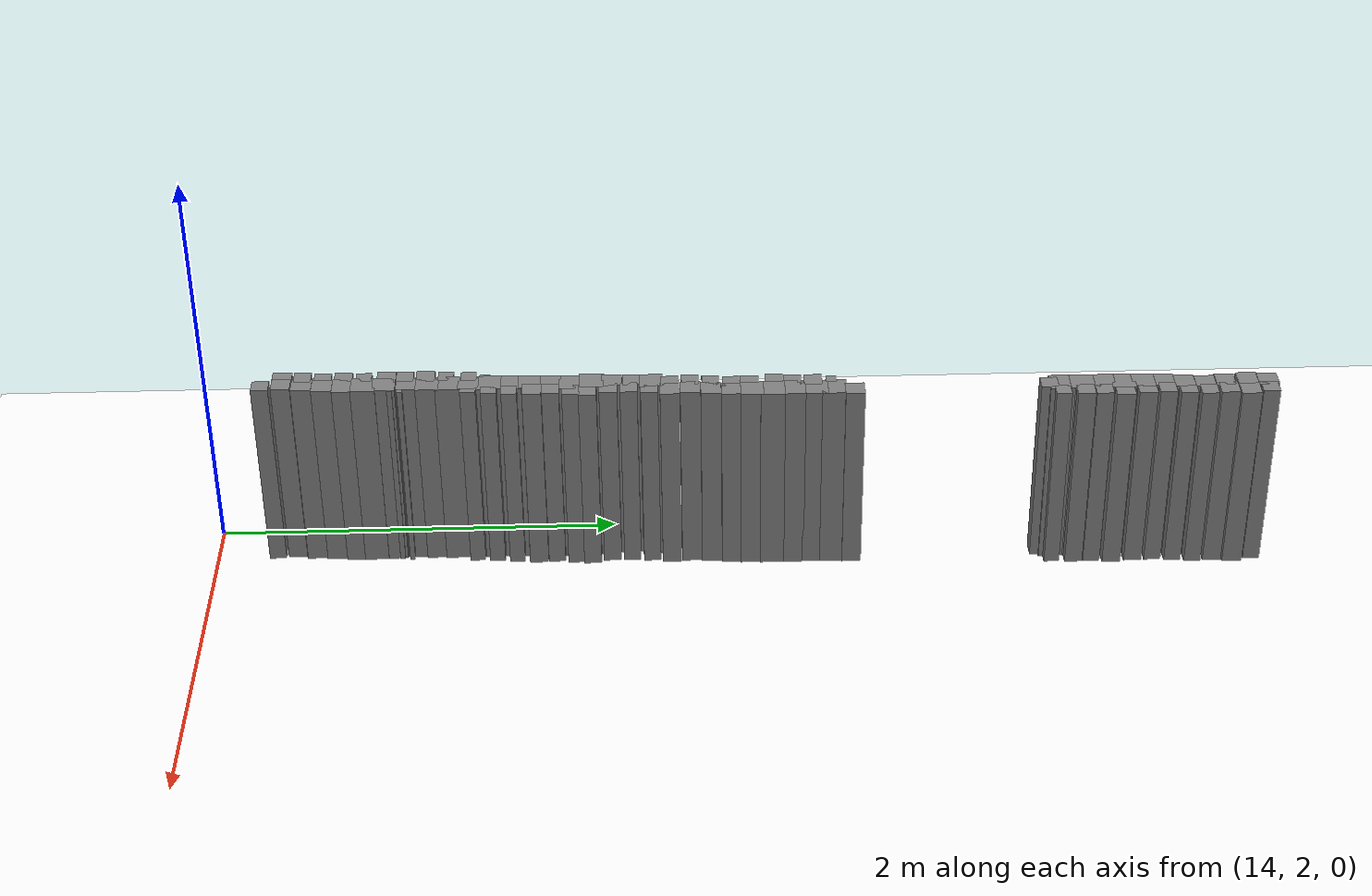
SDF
<sdf version="1.6">
 <world name="default">
  <model name="group_473">
   <pose>14.30 7.11 0.5 0 0 0</pose>
   <static>true</static>
   <link name="link">
    <collision name="collision">
     <geometry><box><size>0.09919226406566957 0.09919226406566957 1</size></box></geometry>
    </collision>
    <visual name="visual">
     <geometry><box><size>0.09919226406566957 0.09919226406566957 1</size></box></geometry>
     <material><ambient>0.5 0.5 0.5 1</ambient></material>
    </visual>
   </link>
  </model>
  <model name="group_474">
   <pose>14.31 7.21 0.5 0 0 0</pose>
   <static>true</static>
   <link name="link">
    <collision name="collision">
     <geometry><box><size>0.09919226406566871 0.09919226406566871 1</size></box></geometry>
    </collision>
    <visual name="visual">
     <geometry><box><size>0.09919226406566871 0.09919226406566871 1</size></box></geometry>
     <material><ambient>0.5 0.5 0.5 1</ambient></material>
    </visual>
   </link>
  </model>
  <model name="group_491">
   <pose>14.25 6.41 0.5 0 0 0</pose>
   <static>true</static>
   <link name="link">
    <collision name="collision"><geometry><box><size>0.0 0.0 1</size></box></geometry></collision>
    <visual name="visual">
     <geometry><box><size>0.0 0.0 1</size></box></geometry>
     <material><ambient>0.5 0.5 0.5 1</ambient></material>
    </visual>
   </link>
  </model>
  <model name="group_492">
   <pose>14.30 6.40 0.5 0 0 0</pose>
   <static>true</static>
   <link name="link">
    <collision name="collision">
     <geometry><box><size>0.11884310777185952 0.11884310777185952 1</size></box></geometry>
    </collision>
    <visual name="visual">
     <geometry><box><size>0.11884310777185952 0.11884310777185952 1</size></box></geometry>
     <material><ambient>0.5 0.5 0.5 1</ambient></material>
    </visual>
   </link>
  </model>
  <model name="group_493">
   <pose>14.30 6.50 0.5 0 0 0</pose>
   <static>true</static>
   <link name="link">
    <collision name="collision">
     <geometry><box><size>0.11941295585761268 0.11941295585761268 1</size></box></geometry>
    </collision>
    <visual name="visual">
     <geometry><box><size>0.11941295585761268 0.11941295585761268 1</size></box></geometry>
     <material><ambient>0.5 0.5 0.5 1</ambient></material>
    </visual>
   </link>
  </model>
  <model name="group_494">
   <pose>14.30 6.60 0.5 0 0 0</pose>
   <static>true</static>
   <link name="link">
    <collision name="collision">
     <geometry><box><size>0.11145209213376754 0.11145209213376754 1</size></box></geometry>
    </collision>
    <visual name="visual">
     <geometry><box><size>0.11145209213376754 0.11145209213376754 1</size></box></geometry>
     <material><ambient>0.5 0.5 0.5 1</ambient></material>
    </visual>
   </link>
  </model>
  <model name="group_495">
   <pose>14.30 6.70 0.5 0 0 0</pose>
   <static>true</static>
   <link name="link">
    <collision name="collision">
     <geometry><box><size>0.09919226406566818 0.09919226406566818 1</size></box></geometry>
    </collision>
    <visual name="visual">
     <geometry><box><size>0.09919226406566818 0.09919226406566818 1</size></box></geometry>
     <material><ambient>0.5 0.5 0.5 1</ambient></material>
    </visual>
   </link>
  </model>
  <model name="group_496">
   <pose>14.31 6.80 0.5 0 0 0</pose>
   <static>true</static>
   <link name="link">
    <collision name="collision">
     <geometry><box><size>0.09919226406566818 0.09919226406566818 1</size></box></geometry>
    </collision>
    <visual name="visual">
     <geometry><box><size>0.09919226406566818 0.09919226406566818 1</size></box></geometry>
     <material><ambient>0.5 0.5 0.5 1</ambient></material>
    </visual>
   </link>
  </model>
  <model name="group_497">
   <pose>14.32 6.90 0.5 0 0 0</pose>
   <static>true</static>
   <link name="link">
    <collision name="collision">
     <geometry><box><size>0.09919226406567094 0.09919226406567094 1</size></box></geometry>
    </collision>
    <visual name="visual">
     <geometry><box><size>0.09919226406567094 0.09919226406567094 1</size></box></geometry>
     <material><ambient>0.5 0.5 0.5 1</ambient></material>
    </visual>
   </link>
  </model>
  <model name="group_498">
   <pose>14.31 7.00 0.5 0 0 0</pose>
   <static>true</static>
   <link name="link">
    <collision name="collision">
     <geometry><box><size>0.0952960850963408 0.0952960850963408 1</size></box></geometry>
    </collision>
    <visual name="visual">
     <geometry><box><size>0.0952960850963408 0.0952960850963408 1</size></box></geometry>
     <material><ambient>0.5 0.5 0.5 1</ambient></material>
    </visual>
   </link>
  </model>
  <model name="group_505">
   <pose>14.30 6.14 0.5 0 0 0</pose>
   <static>true</static>
   <link name="link">
    <collision name="collision">
     <geometry><box><size>0.08442075767464416 0.08442075767464416 1</size></box></geometry>
    </collision>
    <visual name="visual">
     <geometry><box><size>0.08442075767464416 0.08442075767464416 1</size></box></geometry>
     <material><ambient>0.5 0.5 0.5 1</ambient></material>
    </visual>
   </link>
  </model>
  <model name="group_506">
   <pose>14.30 6.20 0.5 0 0 0</pose>
   <static>true</static>
   <link name="link">
    <collision name="collision">
     <geometry><box><size>0.11941295585761921 0.11941295585761921 1</size></box></geometry>
    </collision>
    <visual name="visual">
     <geometry><box><size>0.11941295585761921 0.11941295585761921 1</size></box></geometry>
     <material><ambient>0.5 0.5 0.5 1</ambient></material>
    </visual>
   </link>
  </model>
  <model name="group_507">
   <pose>14.30 6.30 0.5 0 0 0</pose>
   <static>true</static>
   <link name="link">
    <collision name="collision">
     <geometry><box><size>0.11884310777186054 0.11884310777186054 1</size></box></geometry>
    </collision>
    <visual name="visual">
     <geometry><box><size>0.11884310777186054 0.11884310777186054 1</size></box></geometry>
     <material><ambient>0.5 0.5 0.5 1</ambient></material>
    </visual>
   </link>
  </model>
  <model name="group_516">
   <pose>14.38 7.01 0.5 0 0 0</pose>
   <static>true</static>
   <link name="link">
    <collision name="collision">
     <geometry><box><size>0.09244449216996739 0.09244449216996739 1</size></box></geometry>
    </collision>
    <visual name="visual">
     <geometry><box><size>0.09244449216996739 0.09244449216996739 1</size></box></geometry>
     <material><ambient>0.5 0.5 0.5 1</ambient></material>
    </visual>
   </link>
  </model>
  <model name="group_517">
   <pose>14.39 7.11 0.5 0 0 0</pose>
   <static>true</static>
   <link name="link">
    <collision name="collision">
     <geometry><box><size>0.09919226406566649 0.09919226406566649 1</size></box></geometry>
    </collision>
    <visual name="visual">
     <geometry><box><size>0.09919226406566649 0.09919226406566649 1</size></box></geometry>
     <material><ambient>0.5 0.5 0.5 1</ambient></material>
    </visual>
   </link>
  </model>
  <model name="group_518">
   <pose>14.38 7.21 0.5 0 0 0</pose>
   <static>true</static>
   <link name="link">
    <collision name="collision">
     <geometry><box><size>0.08368096618929446 0.08368096618929446 1</size></box></geometry>
    </collision>
    <visual name="visual">
     <geometry><box><size>0.08368096618929446 0.08368096618929446 1</size></box></geometry>
     <material><ambient>0.5 0.5 0.5 1</ambient></material>
    </visual>
   </link>
  </model>
  <model name="group_524">
   <pose>14.22 4.80 0.5 0 0 0</pose>
   <static>true</static>
   <link name="link">
    <collision name="collision">
     <geometry><box><size>0.08740686806820719 0.08740686806820719 1</size></box></geometry>
    </collision>
    <visual name="visual">
     <geometry><box><size>0.08740686806820719 0.08740686806820719 1</size></box></geometry>
     <material><ambient>0.5 0.5 0.5 1</ambient></material>
    </visual>
   </link>
  </model>
  <model name="group_525">
   <pose>14.23 4.89 0.5 0 0 0</pose>
   <static>true</static>
   <link name="link">
    <collision name="collision">
     <geometry><box><size>0.08368096618929574 0.08368096618929574 1</size></box></geometry>
    </collision>
    <visual name="visual">
     <geometry><box><size>0.08368096618929574 0.08368096618929574 1</size></box></geometry>
     <material><ambient>0.5 0.5 0.5 1</ambient></material>
    </visual>
   </link>
  </model>
  <model name="group_526">
   <pose>14.23 4.99 0.5 0 0 0</pose>
   <static>true</static>
   <link name="link">
    <collision name="collision">
     <geometry><box><size>0.08740686806820752 0.08740686806820752 1</size></box></geometry>
    </collision>
    <visual name="visual">
     <geometry><box><size>0.08740686806820752 0.08740686806820752 1</size></box></geometry>
     <material><ambient>0.5 0.5 0.5 1</ambient></material>
    </visual>
   </link>
  </model>
  <model name="group_527">
   <pose>14.23 5.08 0.5 0 0 0</pose>
   <static>true</static>
   <link name="link">
    <collision name="collision">
     <geometry><box><size>0.05055096694252624 0.05055096694252624 1</size></box></geometry>
    </collision>
    <visual name="visual">
     <geometry><box><size>0.05055096694252624 0.05055096694252624 1</size></box></geometry>
     <material><ambient>0.5 0.5 0.5 1</ambient></material>
    </visual>
   </link>
  </model>
  <model name="group_528">
   <pose>14.37 6.61 0.5 0 0 0</pose>
   <static>true</static>
   <link name="link">
    <collision name="collision">
     <geometry><box><size>0.09047058300888358 0.09047058300888358 1</size></box></geometry>
    </collision>
    <visual name="visual">
     <geometry><box><size>0.09047058300888358 0.09047058300888358 1</size></box></geometry>
     <material><ambient>0.5 0.5 0.5 1</ambient></material>
    </visual>
   </link>
  </model>
  <model name="group_529">
   <pose>14.37 6.71 0.5 0 0 0</pose>
   <static>true</static>
   <link name="link">
    <collision name="collision">
     <geometry><box><size>0.08368096618929736 0.08368096618929736 1</size></box></geometry>
    </collision>
    <visual name="visual">
     <geometry><box><size>0.08368096618929736 0.08368096618929736 1</size></box></geometry>
     <material><ambient>0.5 0.5 0.5 1</ambient></material>
    </visual>
   </link>
  </model>
  <model name="group_530">
   <pose>14.38 6.81 0.5 0 0 0</pose>
   <static>true</static>
   <link name="link">
    <collision name="collision">
     <geometry><box><size>0.08368096618929609 0.08368096618929609 1</size></box></geometry>
    </collision>
    <visual name="visual">
     <geometry><box><size>0.08368096618929609 0.08368096618929609 1</size></box></geometry>
     <material><ambient>0.5 0.5 0.5 1</ambient></material>
    </visual>
   </link>
  </model>
  <model name="group_531">
   <pose>14.39 6.91 0.5 0 0 0</pose>
   <static>true</static>
   <link name="link">
    <collision name="collision">
     <geometry><box><size>0.08368096618929736 0.08368096618929736 1</size></box></geometry>
    </collision>
    <visual name="visual">
     <geometry><box><size>0.08368096618929736 0.08368096618929736 1</size></box></geometry>
     <material><ambient>0.5 0.5 0.5 1</ambient></material>
    </visual>
   </link>
  </model>
  <model name="group_534">
   <pose>14.21 3.81 0.5 0 0 0</pose>
   <static>true</static>
   <link name="link">
    <collision name="collision">
     <geometry><box><size>0.11884310777186054 0.11884310777186054 1</size></box></geometry>
    </collision>
    <visual name="visual">
     <geometry><box><size>0.11884310777186054 0.11884310777186054 1</size></box></geometry>
     <material><ambient>0.5 0.5 0.5 1</ambient></material>
    </visual>
   </link>
  </model>
  <model name="group_535">
   <pose>14.20 3.91 0.5 0 0 0</pose>
   <static>true</static>
   <link name="link">
    <collision name="collision">
     <geometry><box><size>0.11941295585761921 0.11941295585761921 1</size></box></geometry>
    </collision>
    <visual name="visual">
     <geometry><box><size>0.11941295585761921 0.11941295585761921 1</size></box></geometry>
     <material><ambient>0.5 0.5 0.5 1</ambient></material>
    </visual>
   </link>
  </model>
  <model name="group_536">
   <pose>14.20 4.01 0.5 0 0 0</pose>
   <static>true</static>
   <link name="link">
    <collision name="collision">
     <geometry><box><size>0.09919226406567094 0.09919226406567094 1</size></box></geometry>
    </collision>
    <visual name="visual">
     <geometry><box><size>0.09919226406567094 0.09919226406567094 1</size></box></geometry>
     <material><ambient>0.5 0.5 0.5 1</ambient></material>
    </visual>
   </link>
  </model>
  <model name="group_537">
   <pose>14.20 4.11 0.5 0 0 0</pose>
   <static>true</static>
   <link name="link">
    <collision name="collision">
     <geometry><box><size>0.09244449216996911 0.09244449216996911 1</size></box></geometry>
    </collision>
    <visual name="visual">
     <geometry><box><size>0.09244449216996911 0.09244449216996911 1</size></box></geometry>
     <material><ambient>0.5 0.5 0.5 1</ambient></material>
    </visual>
   </link>
  </model>
  <model name="group_538">
   <pose>14.21 4.20 0.5 0 0 0</pose>
   <static>true</static>
   <link name="link">
    <collision name="collision">
     <geometry><box><size>0.11027156059254058 0.11027156059254058 1</size></box></geometry>
    </collision>
    <visual name="visual">
     <geometry><box><size>0.11027156059254058 0.11027156059254058 1</size></box></geometry>
     <material><ambient>0.5 0.5 0.5 1</ambient></material>
    </visual>
   </link>
  </model>
  <model name="group_539">
   <pose>14.22 4.29 0.5 0 0 0</pose>
   <static>true</static>
   <link name="link">
    <collision name="collision">
     <geometry><box><size>0.08941580635747629 0.08941580635747629 1</size></box></geometry>
    </collision>
    <visual name="visual">
     <geometry><box><size>0.08941580635747629 0.08941580635747629 1</size></box></geometry>
     <material><ambient>0.5 0.5 0.5 1</ambient></material>
    </visual>
   </link>
  </model>
  <model name="group_540">
   <pose>14.21 4.39 0.5 0 0 0</pose>
   <static>true</static>
   <link name="link">
    <collision name="collision">
     <geometry><box><size>0.08368096618929736 0.08368096618929736 1</size></box></geometry>
    </collision>
    <visual name="visual">
     <geometry><box><size>0.08368096618929736 0.08368096618929736 1</size></box></geometry>
     <material><ambient>0.5 0.5 0.5 1</ambient></material>
    </visual>
   </link>
  </model>
  <model name="group_541">
   <pose>14.22 4.49 0.5 0 0 0</pose>
   <static>true</static>
   <link name="link">
    <collision name="collision">
     <geometry><box><size>0.08368096618929574 0.08368096618929574 1</size></box></geometry>
    </collision>
    <visual name="visual">
     <geometry><box><size>0.08368096618929574 0.08368096618929574 1</size></box></geometry>
     <material><ambient>0.5 0.5 0.5 1</ambient></material>
    </visual>
   </link>
  </model>
  <model name="group_542">
   <pose>14.23 4.59 0.5 0 0 0</pose>
   <static>true</static>
   <link name="link">
    <collision name="collision">
     <geometry><box><size>0.08368096618929736 0.08368096618929736 1</size></box></geometry>
    </collision>
    <visual name="visual">
     <geometry><box><size>0.08368096618929736 0.08368096618929736 1</size></box></geometry>
     <material><ambient>0.5 0.5 0.5 1</ambient></material>
    </visual>
   </link>
  </model>
  <model name="group_543">
   <pose>14.23 4.68 0.5 0 0 0</pose>
   <static>true</static>
   <link name="link">
    <collision name="collision">
     <geometry><box><size>0.09047058300888536 0.09047058300888536 1</size></box></geometry>
    </collision>
    <visual name="visual">
     <geometry><box><size>0.09047058300888536 0.09047058300888536 1</size></box></geometry>
     <material><ambient>0.5 0.5 0.5 1</ambient></material>
    </visual>
   </link>
  </model>
  <model name="group_544">
   <pose>14.30 5.00 0.5 0 0 0</pose>
   <static>true</static>
   <link name="link">
    <collision name="collision">
     <geometry><box><size>0.11884310777185171 0.11884310777185171 1</size></box></geometry>
    </collision>
    <visual name="visual">
     <geometry><box><size>0.11884310777185171 0.11884310777185171 1</size></box></geometry>
     <material><ambient>0.5 0.5 0.5 1</ambient></material>
    </visual>
   </link>
  </model>
  <model name="group_545">
   <pose>14.30 5.09 0.5 0 0 0</pose>
   <static>true</static>
   <link name="link">
    <collision name="collision">
     <geometry><box><size>0.1203917151839075 0.1203917151839075 1</size></box></geometry>
    </collision>
    <visual name="visual">
     <geometry><box><size>0.1203917151839075 0.1203917151839075 1</size></box></geometry>
     <material><ambient>0.5 0.5 0.5 1</ambient></material>
    </visual>
   </link>
  </model>
  <model name="group_546">
   <pose>14.37 6.31 0.5 0 0 0</pose>
   <static>true</static>
   <link name="link">
    <collision name="collision">
     <geometry><box><size>0.08740686806820892 0.08740686806820892 1</size></box></geometry>
    </collision>
    <visual name="visual">
     <geometry><box><size>0.08740686806820892 0.08740686806820892 1</size></box></geometry>
     <material><ambient>0.5 0.5 0.5 1</ambient></material>
    </visual>
   </link>
  </model>
  <model name="group_547">
   <pose>14.37 6.40 0.5 0 0 0</pose>
   <static>true</static>
   <link name="link">
    <collision name="collision">
     <geometry><box><size>0.08368096618929591 0.08368096618929591 1</size></box></geometry>
    </collision>
    <visual name="visual">
     <geometry><box><size>0.08368096618929591 0.08368096618929591 1</size></box></geometry>
     <material><ambient>0.5 0.5 0.5 1</ambient></material>
    </visual>
   </link>
  </model>
  <model name="group_548">
   <pose>14.38 6.50 0.5 0 0 0</pose>
   <static>true</static>
   <link name="link">
    <collision name="collision">
     <geometry><box><size>0.09254898717361104 0.09254898717361104 1</size></box></geometry>
    </collision>
    <visual name="visual">
     <geometry><box><size>0.09254898717361104 0.09254898717361104 1</size></box></geometry>
     <material><ambient>0.5 0.5 0.5 1</ambient></material>
    </visual>
   </link>
  </model>
  <model name="group_549">
   <pose>14.13 2.91 0.5 0 0 0</pose>
   <static>true</static>
   <link name="link">
    <collision name="collision">
     <geometry><box><size>0.0925489871736119 0.0925489871736119 1</size></box></geometry>
    </collision>
    <visual name="visual">
     <geometry><box><size>0.0925489871736119 0.0925489871736119 1</size></box></geometry>
     <material><ambient>0.5 0.5 0.5 1</ambient></material>
    </visual>
   </link>
  </model>
  <model name="group_550">
   <pose>14.13 3.00 0.5 0 0 0</pose>
   <static>true</static>
   <link name="link">
    <collision name="collision">
     <geometry><box><size>0.08368096618929446 0.08368096618929446 1</size></box></geometry>
    </collision>
    <visual name="visual">
     <geometry><box><size>0.08368096618929446 0.08368096618929446 1</size></box></geometry>
     <material><ambient>0.5 0.5 0.5 1</ambient></material>
    </visual>
   </link>
  </model>
  <model name="group_551">
   <pose>14.13 3.10 0.5 0 0 0</pose>
   <static>true</static>
   <link name="link">
    <collision name="collision">
     <geometry><box><size>0.09047058300888479 0.09047058300888479 1</size></box></geometry>
    </collision>
    <visual name="visual">
     <geometry><box><size>0.09047058300888479 0.09047058300888479 1</size></box></geometry>
     <material><ambient>0.5 0.5 0.5 1</ambient></material>
    </visual>
   </link>
  </model>
  <model name="group_552">
   <pose>14.13 3.20 0.5 0 0 0</pose>
   <static>true</static>
   <link name="link">
    <collision name="collision">
     <geometry><box><size>0.07582645041378969 0.07582645041378969 1</size></box></geometry>
    </collision>
    <visual name="visual">
     <geometry><box><size>0.07582645041378969 0.07582645041378969 1</size></box></geometry>
     <material><ambient>0.5 0.5 0.5 1</ambient></material>
    </visual>
   </link>
  </model>
  <model name="group_553">
   <pose>14.14 3.31 0.5 0 0 0</pose>
   <static>true</static>
   <link name="link">
    <collision name="collision">
     <geometry><box><size>0.0758264504137903 0.0758264504137903 1</size></box></geometry>
    </collision>
    <visual name="visual">
     <geometry><box><size>0.0758264504137903 0.0758264504137903 1</size></box></geometry>
     <material><ambient>0.5 0.5 0.5 1</ambient></material>
    </visual>
   </link>
  </model>
  <model name="group_554">
   <pose>14.15 3.39 0.5 0 0 0</pose>
   <static>true</static>
   <link name="link">
    <collision name="collision">
     <geometry><box><size>0.050550966942526566 0.050550966942526566 1</size></box></geometry>
    </collision>
    <visual name="visual">
     <geometry><box><size>0.050550966942526566 0.050550966942526566 1</size></box></geometry>
     <material><ambient>0.5 0.5 0.5 1</ambient></material>
    </visual>
   </link>
  </model>
  <model name="group_555">
   <pose>14.20 3.41 0.5 0 0 0</pose>
   <static>true</static>
   <link name="link">
    <collision name="collision">
     <geometry><box><size>0.11884310777185365 0.11884310777185365 1</size></box></geometry>
    </collision>
    <visual name="visual">
     <geometry><box><size>0.11884310777185365 0.11884310777185365 1</size></box></geometry>
     <material><ambient>0.5 0.5 0.5 1</ambient></material>
    </visual>
   </link>
  </model>
  <model name="group_556">
   <pose>14.20 3.51 0.5 0 0 0</pose>
   <static>true</static>
   <link name="link">
    <collision name="collision">
     <geometry><box><size>0.1194129558576171 0.1194129558576171 1</size></box></geometry>
    </collision>
    <visual name="visual">
     <geometry><box><size>0.1194129558576171 0.1194129558576171 1</size></box></geometry>
     <material><ambient>0.5 0.5 0.5 1</ambient></material>
    </visual>
   </link>
  </model>
  <model name="group_557">
   <pose>14.20 3.61 0.5 0 0 0</pose>
   <static>true</static>
   <link name="link">
    <collision name="collision">
     <geometry><box><size>0.11218382099302139 0.11218382099302139 1</size></box></geometry>
    </collision>
    <visual name="visual">
     <geometry><box><size>0.11218382099302139 0.11218382099302139 1</size></box></geometry>
     <material><ambient>0.5 0.5 0.5 1</ambient></material>
    </visual>
   </link>
  </model>
  <model name="group_558">
   <pose>14.20 3.71 0.5 0 0 0</pose>
   <static>true</static>
   <link name="link">
    <collision name="collision">
     <geometry><box><size>0.09919226406567025 0.09919226406567025 1</size></box></geometry>
    </collision>
    <visual name="visual">
     <geometry><box><size>0.09919226406567025 0.09919226406567025 1</size></box></geometry>
     <material><ambient>0.5 0.5 0.5 1</ambient></material>
    </visual>
   </link>
  </model>
  <model name="group_559">
   <pose>14.30 4.69 0.5 0 0 0</pose>
   <static>true</static>
   <link name="link">
    <collision name="collision">
     <geometry><box><size>0.11145209213376987 0.11145209213376987 1</size></box></geometry>
    </collision>
    <visual name="visual">
     <geometry><box><size>0.11145209213376987 0.11145209213376987 1</size></box></geometry>
     <material><ambient>0.5 0.5 0.5 1</ambient></material>
    </visual>
   </link>
  </model>
  <model name="group_560">
   <pose>14.30 4.79 0.5 0 0 0</pose>
   <static>true</static>
   <link name="link">
    <collision name="collision">
     <geometry><box><size>0.11941295585761921 0.11941295585761921 1</size></box></geometry>
    </collision>
    <visual name="visual">
     <geometry><box><size>0.11941295585761921 0.11941295585761921 1</size></box></geometry>
     <material><ambient>0.5 0.5 0.5 1</ambient></material>
    </visual>
   </link>
  </model>
  <model name="group_561">
   <pose>14.30 4.89 0.5 0 0 0</pose>
   <static>true</static>
   <link name="link">
    <collision name="collision">
     <geometry><box><size>0.11884310777185365 0.11884310777185365 1</size></box></geometry>
    </collision>
    <visual name="visual">
     <geometry><box><size>0.11884310777185365 0.11884310777185365 1</size></box></geometry>
     <material><ambient>0.5 0.5 0.5 1</ambient></material>
    </visual>
   </link>
  </model>
  <model name="group_562">
   <pose>14.32 5.19 0.5 0 0 0</pose>
   <static>true</static>
   <link name="link">
    <collision name="collision">
     <geometry><box><size>0.0950132737134097 0.0950132737134097 1</size></box></geometry>
    </collision>
    <visual name="visual">
     <geometry><box><size>0.0950132737134097 0.0950132737134097 1</size></box></geometry>
     <material><ambient>0.5 0.5 0.5 1</ambient></material>
    </visual>
   </link>
  </model>
  <model name="group_563">
   <pose>14.37 6.14 0.5 0 0 0</pose>
   <static>true</static>
   <link name="link">
    <collision name="collision"><geometry><box><size>0.0 0.0 1</size></box></geometry></collision>
    <visual name="visual">
     <geometry><box><size>0.0 0.0 1</size></box></geometry>
     <material><ambient>0.5 0.5 0.5 1</ambient></material>
    </visual>
   </link>
  </model>
  <model name="group_564">
   <pose>14.37 6.20 0.5 0 0 0</pose>
   <static>true</static>
   <link name="link">
    <collision name="collision">
     <geometry><box><size>0.07582645041379146 0.07582645041379146 1</size></box></geometry>
    </collision>
    <visual name="visual">
     <geometry><box><size>0.07582645041379146 0.07582645041379146 1</size></box></geometry>
     <material><ambient>0.5 0.5 0.5 1</ambient></material>
    </visual>
   </link>
  </model>
  <model name="group_569">
   <pose>14.12 2.40 0.5 0 0 0</pose>
   <static>true</static>
   <link name="link">
    <collision name="collision">
     <geometry><box><size>0.0952960850963408 0.0952960850963408 1</size></box></geometry>
    </collision>
    <visual name="visual">
     <geometry><box><size>0.0952960850963408 0.0952960850963408 1</size></box></geometry>
     <material><ambient>0.5 0.5 0.5 1</ambient></material>
    </visual>
   </link>
  </model>
  <model name="group_570">
   <pose>14.12 2.50 0.5 0 0 0</pose>
   <static>true</static>
   <link name="link">
    <collision name="collision">
     <geometry><box><size>0.08368096618929736 0.08368096618929736 1</size></box></geometry>
    </collision>
    <visual name="visual">
     <geometry><box><size>0.08368096618929736 0.08368096618929736 1</size></box></geometry>
     <material><ambient>0.5 0.5 0.5 1</ambient></material>
    </visual>
   </link>
  </model>
  <model name="group_571">
   <pose>14.13 2.60 0.5 0 0 0</pose>
   <static>true</static>
   <link name="link">
    <collision name="collision">
     <geometry><box><size>0.08368096618929591 0.08368096618929591 1</size></box></geometry>
    </collision>
    <visual name="visual">
     <geometry><box><size>0.08368096618929591 0.08368096618929591 1</size></box></geometry>
     <material><ambient>0.5 0.5 0.5 1</ambient></material>
    </visual>
   </link>
  </model>
  <model name="group_572">
   <pose>14.13 2.70 0.5 0 0 0</pose>
   <static>true</static>
   <link name="link">
    <collision name="collision">
     <geometry><box><size>0.08740686806820648 0.08740686806820648 1</size></box></geometry>
    </collision>
    <visual name="visual">
     <geometry><box><size>0.08740686806820648 0.08740686806820648 1</size></box></geometry>
     <material><ambient>0.5 0.5 0.5 1</ambient></material>
    </visual>
   </link>
  </model>
  <model name="group_573">
   <pose>14.13 2.80 0.5 0 0 0</pose>
   <static>true</static>
   <link name="link">
    <collision name="collision">
     <geometry><box><size>0.07582645041378969 0.07582645041378969 1</size></box></geometry>
    </collision>
    <visual name="visual">
     <geometry><box><size>0.07582645041378969 0.07582645041378969 1</size></box></geometry>
     <material><ambient>0.5 0.5 0.5 1</ambient></material>
    </visual>
   </link>
  </model>
  <model name="group_574">
   <pose>14.20 3.11 0.5 0 0 0</pose>
   <static>true</static>
   <link name="link">
    <collision name="collision">
     <geometry><box><size>0.11145209213376872 0.11145209213376872 1</size></box></geometry>
    </collision>
    <visual name="visual">
     <geometry><box><size>0.11145209213376872 0.11145209213376872 1</size></box></geometry>
     <material><ambient>0.5 0.5 0.5 1</ambient></material>
    </visual>
   </link>
  </model>
  <model name="group_575">
   <pose>14.20 3.21 0.5 0 0 0</pose>
   <static>true</static>
   <link name="link">
    <collision name="collision">
     <geometry><box><size>0.11941295585761864 0.11941295585761864 1</size></box></geometry>
    </collision>
    <visual name="visual">
     <geometry><box><size>0.11941295585761864 0.11941295585761864 1</size></box></geometry>
     <material><ambient>0.5 0.5 0.5 1</ambient></material>
    </visual>
   </link>
  </model>
  <model name="group_576">
   <pose>14.20 3.31 0.5 0 0 0</pose>
   <static>true</static>
   <link name="link">
    <collision name="collision">
     <geometry><box><size>0.09919226406566803 0.09919226406566803 1</size></box></geometry>
    </collision>
    <visual name="visual">
     <geometry><box><size>0.09919226406566803 0.09919226406566803 1</size></box></geometry>
     <material><ambient>0.5 0.5 0.5 1</ambient></material>
    </visual>
   </link>
  </model>
  <model name="group_577">
   <pose>14.29 4.29 0.5 0 0 0</pose>
   <static>true</static>
   <link name="link">
    <collision name="collision">
     <geometry><box><size>0.0952960850963382 0.0952960850963382 1</size></box></geometry>
    </collision>
    <visual name="visual">
     <geometry><box><size>0.0952960850963382 0.0952960850963382 1</size></box></geometry>
     <material><ambient>0.5 0.5 0.5 1</ambient></material>
    </visual>
   </link>
  </model>
  <model name="group_578">
   <pose>14.28 4.39 0.5 0 0 0</pose>
   <static>true</static>
   <link name="link">
    <collision name="collision">
     <geometry><box><size>0.09919226406567094 0.09919226406567094 1</size></box></geometry>
    </collision>
    <visual name="visual">
     <geometry><box><size>0.09919226406567094 0.09919226406567094 1</size></box></geometry>
     <material><ambient>0.5 0.5 0.5 1</ambient></material>
    </visual>
   </link>
  </model>
  <model name="group_579">
   <pose>14.29 4.49 0.5 0 0 0</pose>
   <static>true</static>
   <link name="link">
    <collision name="collision">
     <geometry><box><size>0.09919226406566957 0.09919226406566957 1</size></box></geometry>
    </collision>
    <visual name="visual">
     <geometry><box><size>0.09919226406566957 0.09919226406566957 1</size></box></geometry>
     <material><ambient>0.5 0.5 0.5 1</ambient></material>
    </visual>
   </link>
  </model>
  <model name="group_580">
   <pose>14.30 4.59 0.5 0 0 0</pose>
   <static>true</static>
   <link name="link">
    <collision name="collision">
     <geometry><box><size>0.09919226406566957 0.09919226406566957 1</size></box></geometry>
    </collision>
    <visual name="visual">
     <geometry><box><size>0.09919226406566957 0.09919226406566957 1</size></box></geometry>
     <material><ambient>0.5 0.5 0.5 1</ambient></material>
    </visual>
   </link>
  </model>
  <model name="group_588">
   <pose>14.20 2.71 0.5 0 0 0</pose>
   <static>true</static>
   <link name="link">
    <collision name="collision">
     <geometry><box><size>0.11884310777184728 0.11884310777184728 1</size></box></geometry>
    </collision>
    <visual name="visual">
     <geometry><box><size>0.11884310777184728 0.11884310777184728 1</size></box></geometry>
     <material><ambient>0.5 0.5 0.5 1</ambient></material>
    </visual>
   </link>
  </model>
  <model name="group_589">
   <pose>14.20 2.80 0.5 0 0 0</pose>
   <static>true</static>
   <link name="link">
    <collision name="collision">
     <geometry><box><size>0.11941295585761537 0.11941295585761537 1</size></box></geometry>
    </collision>
    <visual name="visual">
     <geometry><box><size>0.11941295585761537 0.11941295585761537 1</size></box></geometry>
     <material><ambient>0.5 0.5 0.5 1</ambient></material>
    </visual>
   </link>
  </model>
  <model name="group_590">
   <pose>14.20 2.90 0.5 0 0 0</pose>
   <static>true</static>
   <link name="link">
    <collision name="collision">
     <geometry><box><size>0.11218382099302819 0.11218382099302819 1</size></box></geometry>
    </collision>
    <visual name="visual">
     <geometry><box><size>0.11218382099302819 0.11218382099302819 1</size></box></geometry>
     <material><ambient>0.5 0.5 0.5 1</ambient></material>
    </visual>
   </link>
  </model>
  <model name="group_591">
   <pose>14.20 3.01 0.5 0 0 0</pose>
   <static>true</static>
   <link name="link">
    <collision name="collision">
     <geometry><box><size>0.0991922640656651 0.0991922640656651 1</size></box></geometry>
    </collision>
    <visual name="visual">
     <geometry><box><size>0.0991922640656651 0.0991922640656651 1</size></box></geometry>
     <material><ambient>0.5 0.5 0.5 1</ambient></material>
    </visual>
   </link>
  </model>
  <model name="group_592">
   <pose>14.27 3.99 0.5 0 0 0</pose>
   <static>true</static>
   <link name="link">
    <collision name="collision">
     <geometry><box><size>0.08740686806820806 0.08740686806820806 1</size></box></geometry>
    </collision>
    <visual name="visual">
     <geometry><box><size>0.08740686806820806 0.08740686806820806 1</size></box></geometry>
     <material><ambient>0.5 0.5 0.5 1</ambient></material>
    </visual>
   </link>
  </model>
  <model name="group_593">
   <pose>14.27 4.09 0.5 0 0 0</pose>
   <static>true</static>
   <link name="link">
    <collision name="collision">
     <geometry><box><size>0.08368096618929736 0.08368096618929736 1</size></box></geometry>
    </collision>
    <visual name="visual">
     <geometry><box><size>0.08368096618929736 0.08368096618929736 1</size></box></geometry>
     <material><ambient>0.5 0.5 0.5 1</ambient></material>
    </visual>
   </link>
  </model>
  <model name="group_594">
   <pose>14.28 4.19 0.5 0 0 0</pose>
   <static>true</static>
   <link name="link">
    <collision name="collision">
     <geometry><box><size>0.08368096618929574 0.08368096618929574 1</size></box></geometry>
    </collision>
    <visual name="visual">
     <geometry><box><size>0.08368096618929574 0.08368096618929574 1</size></box></geometry>
     <material><ambient>0.5 0.5 0.5 1</ambient></material>
    </visual>
   </link>
  </model>
  <model name="group_595">
   <pose>14.35 5.23 0.5 0 0 0</pose>
   <static>true</static>
   <link name="link">
    <collision name="collision"><geometry><box><size>0.0 0.0 1</size></box></geometry></collision>
    <visual name="visual">
     <geometry><box><size>0.0 0.0 1</size></box></geometry>
     <material><ambient>0.5 0.5 0.5 1</ambient></material>
    </visual>
   </link>
  </model>
  <model name="group_596">
   <pose>14.18 2.40 0.5 0 0 0</pose>
   <static>true</static>
   <link name="link">
    <collision name="collision">
     <geometry><box><size>0.09244449216996832 0.09244449216996832 1</size></box></geometry>
    </collision>
    <visual name="visual">
     <geometry><box><size>0.09244449216996832 0.09244449216996832 1</size></box></geometry>
     <material><ambient>0.5 0.5 0.5 1</ambient></material>
    </visual>
   </link>
  </model>
  <model name="group_597">
   <pose>14.19 2.50 0.5 0 0 0</pose>
   <static>true</static>
   <link name="link">
    <collision name="collision">
     <geometry><box><size>0.09919226406567025 0.09919226406567025 1</size></box></geometry>
    </collision>
    <visual name="visual">
     <geometry><box><size>0.09919226406567025 0.09919226406567025 1</size></box></geometry>
     <material><ambient>0.5 0.5 0.5 1</ambient></material>
    </visual>
   </link>
  </model>
  <model name="group_598">
   <pose>14.20 2.60 0.5 0 0 0</pose>
   <static>true</static>
   <link name="link">
    <collision name="collision">
     <geometry><box><size>0.09919226406566888 0.09919226406566888 1</size></box></geometry>
    </collision>
    <visual name="visual">
     <geometry><box><size>0.09919226406566888 0.09919226406566888 1</size></box></geometry>
     <material><ambient>0.5 0.5 0.5 1</ambient></material>
    </visual>
   </link>
  </model>
  <model name="group_599">
   <pose>14.27 3.62 0.5 0 0 0</pose>
   <static>true</static>
   <link name="link">
    <collision name="collision">
     <geometry><box><size>0.09254898717361235 0.09254898717361235 1</size></box></geometry>
    </collision>
    <visual name="visual">
     <geometry><box><size>0.09254898717361235 0.09254898717361235 1</size></box></geometry>
     <material><ambient>0.5 0.5 0.5 1</ambient></material>
    </visual>
   </link>
  </model>
  <model name="group_600">
   <pose>14.27 3.71 0.5 0 0 0</pose>
   <static>true</static>
   <link name="link">
    <collision name="collision">
     <geometry><box><size>0.08368096618929365 0.08368096618929365 1</size></box></geometry>
    </collision>
    <visual name="visual">
     <geometry><box><size>0.08368096618929365 0.08368096618929365 1</size></box></geometry>
     <material><ambient>0.5 0.5 0.5 1</ambient></material>
    </visual>
   </link>
  </model>
  <model name="group_601">
   <pose>14.28 3.81 0.5 0 0 0</pose>
   <static>true</static>
   <link name="link">
    <collision name="collision">
     <geometry><box><size>0.08740686806820806 0.08740686806820806 1</size></box></geometry>
    </collision>
    <visual name="visual">
     <geometry><box><size>0.08740686806820806 0.08740686806820806 1</size></box></geometry>
     <material><ambient>0.5 0.5 0.5 1</ambient></material>
    </visual>
   </link>
  </model>
  <model name="group_602">
   <pose>14.29 3.89 0.5 0 0 0</pose>
   <static>true</static>
   <link name="link">
    <collision name="collision">
     <geometry><box><size>0.08740686806820806 0.08740686806820806 1</size></box></geometry>
    </collision>
    <visual name="visual">
     <geometry><box><size>0.08740686806820806 0.08740686806820806 1</size></box></geometry>
     <material><ambient>0.5 0.5 0.5 1</ambient></material>
    </visual>
   </link>
  </model>
  <model name="group_606">
   <pose>14.19 2.30 0.5 0 0 0</pose>
   <static>true</static>
   <link name="link">
    <collision name="collision">
     <geometry><box><size>0.08368096618929736 0.08368096618929736 1</size></box></geometry>
    </collision>
    <visual name="visual">
     <geometry><box><size>0.08368096618929736 0.08368096618929736 1</size></box></geometry>
     <material><ambient>0.5 0.5 0.5 1</ambient></material>
    </visual>
   </link>
  </model>
  <model name="group_607">
   <pose>14.25 3.31 0.5 0 0 0</pose>
   <static>true</static>
   <link name="link">
    <collision name="collision">
     <geometry><box><size>0.07582645041378969 0.07582645041378969 1</size></box></geometry>
    </collision>
    <visual name="visual">
     <geometry><box><size>0.07582645041378969 0.07582645041378969 1</size></box></geometry>
     <material><ambient>0.5 0.5 0.5 1</ambient></material>
    </visual>
   </link>
  </model>
  <model name="group_608">
   <pose>14.26 3.41 0.5 0 0 0</pose>
   <static>true</static>
   <link name="link">
    <collision name="collision">
     <geometry><box><size>0.07582645041378969 0.07582645041378969 1</size></box></geometry>
    </collision>
    <visual name="visual">
     <geometry><box><size>0.07582645041378969 0.07582645041378969 1</size></box></geometry>
     <material><ambient>0.5 0.5 0.5 1</ambient></material>
    </visual>
   </link>
  </model>
  <model name="group_609">
   <pose>14.27 3.51 0.5 0 0 0</pose>
   <static>true</static>
   <link name="link">
    <collision name="collision">
     <geometry><box><size>0.07582645041378969 0.07582645041378969 1</size></box></geometry>
    </collision>
    <visual name="visual">
     <geometry><box><size>0.07582645041378969 0.07582645041378969 1</size></box></geometry>
     <material><ambient>0.5 0.5 0.5 1</ambient></material>
    </visual>
   </link>
  </model>
  <model name="group_614">
   <pose>14.25 2.93 0.5 0 0 0</pose>
   <static>true</static>
   <link name="link">
    <collision name="collision">
     <geometry><box><size>0.02527548347126284 0.02527548347126284 1</size></box></geometry>
    </collision>
    <visual name="visual">
     <geometry><box><size>0.02527548347126284 0.02527548347126284 1</size></box></geometry>
     <material><ambient>0.5 0.5 0.5 1</ambient></material>
    </visual>
   </link>
  </model>
  <model name="group_615">
   <pose>14.26 2.98 0.5 0 0 0</pose>
   <static>true</static>
   <link name="link">
    <collision name="collision">
     <geometry><box><size>0.025275483471263727 0.025275483471263727 1</size></box></geometry>
    </collision>
    <visual name="visual">
     <geometry><box><size>0.025275483471263727 0.025275483471263727 1</size></box></geometry>
     <material><ambient>0.5 0.5 0.5 1</ambient></material>
    </visual>
   </link>
  </model>
  <model name="ground_plane">
   <static>true</static>
   <link name="link">
    <collision name="collision">
     <geometry><plane><normal>0 0 1</normal><size>100 100</size></plane></geometry>
    </collision>
    <visual name="visual">
     <geometry><plane><normal>0 0 1</normal><size>100 100</size></plane></geometry>
     <material><ambient>1 1 1 1</ambient></material>
    </visual>
   </link>
  </model>
 </world>
</sdf>
